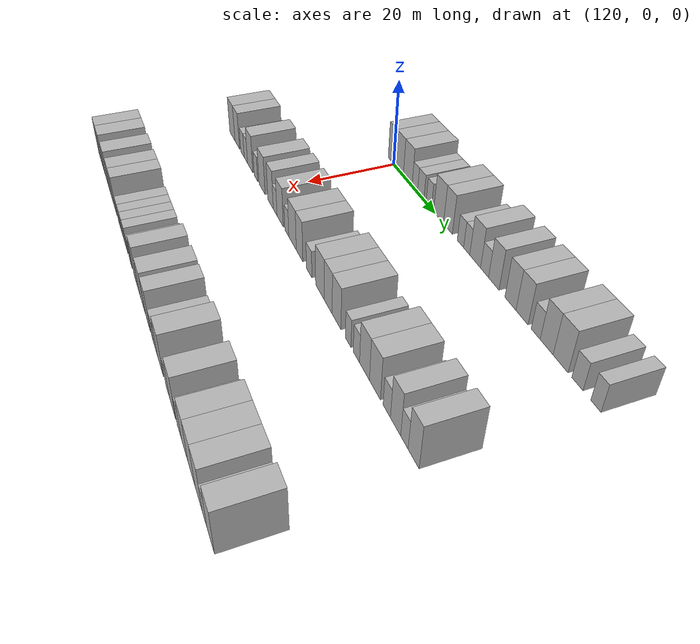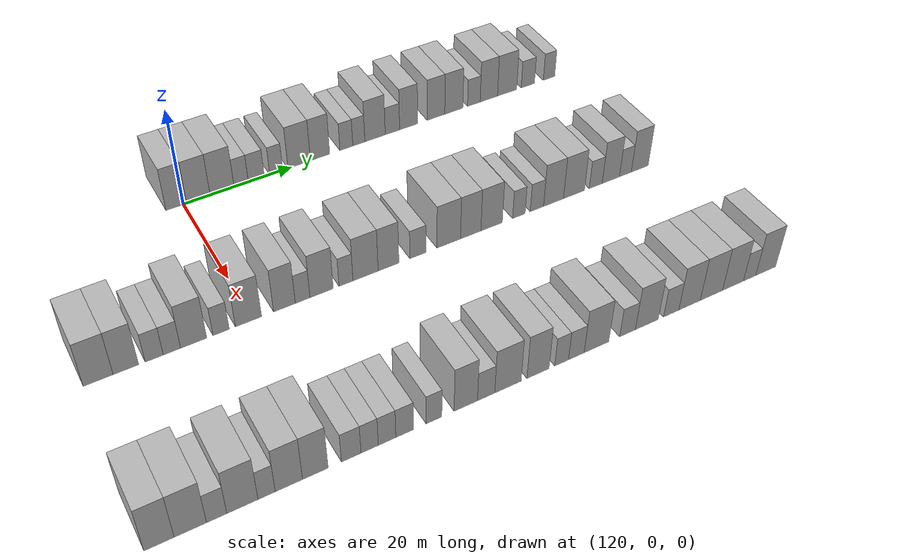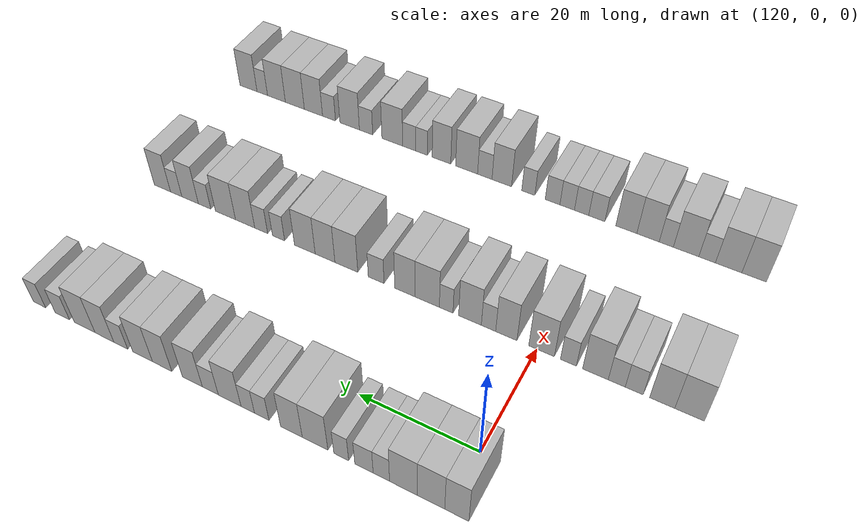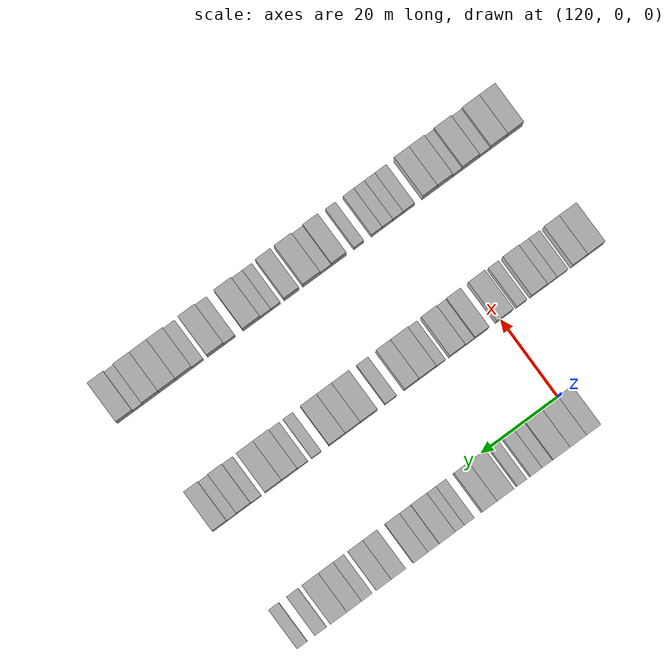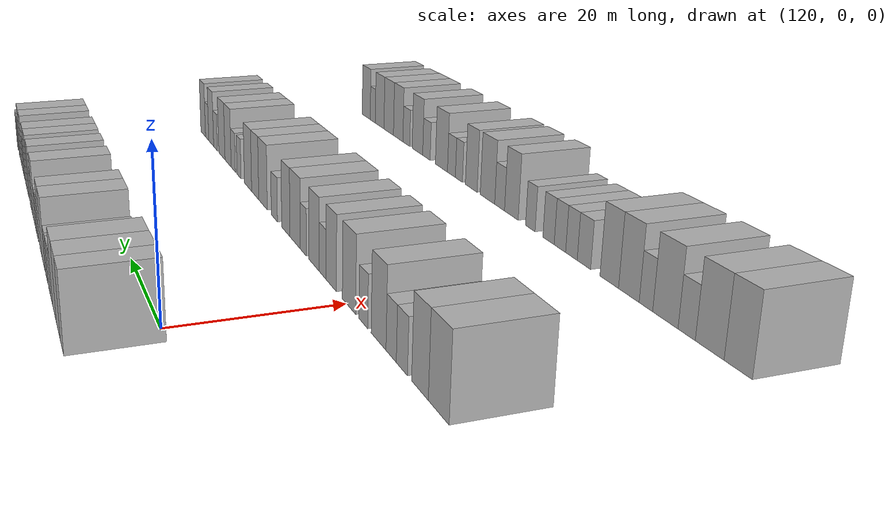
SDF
<sdf version="1.6">
 <world name="default">
  <model name="building_784">
   <static>1</static>
   <pose>115.0000 -1.3031 0 0.000000 0.000000 0.000000</pose>
   <link name="link">
    <pose>0 0 4.50 0 0 0</pose>
    <collision name="collision"><geometry><box><size>10.0000 3.6559 9.0000</size></box></geometry></collision>
    <visual name="visual">
     <cast_shadows>0</cast_shadows>
     <geometry><box><size>10.0000 3.6559 9.0000</size></box></geometry>
     <material>
      <script>
       <uri>model://HANNAS_wall/materials/scripts</uri>
       <uri>model://HANNAS_wall/materials/textures</uri>
       <name>vrc/HANNAS_wall</name>
      </script>
     </material>
    </visual>
   </link>
  </model>
  <model name="building_785">
   <static>1</static>
   <pose>115.0000 2.6404 0 0.000000 0.000000 0.000000</pose>
   <link name="link">
    <pose>0 0 4.50 0 0 0</pose>
    <collision name="collision"><geometry><box><size>10.0000 4.2312 9.0000</size></box></geometry></collision>
    <visual name="visual">
     <cast_shadows>0</cast_shadows>
     <geometry><box><size>10.0000 4.2312 9.0000</size></box></geometry>
     <material>
      <script>
       <uri>model://HANNAS_wall/materials/scripts</uri>
       <uri>model://HANNAS_wall/materials/textures</uri>
       <name>vrc/HANNAS_wall</name>
      </script>
     </material>
    </visual>
   </link>
  </model>
  <model name="building_786">
   <static>1</static>
   <pose>115.0000 6.9438 0 0.000000 0.000000 0.000000</pose>
   <link name="link">
    <pose>0 0 4.50 0 0 0</pose>
    <collision name="collision"><geometry><box><size>10.0000 4.3754 9.0000</size></box></geometry></collision>
    <visual name="visual">
     <cast_shadows>0</cast_shadows>
     <geometry><box><size>10.0000 4.3754 9.0000</size></box></geometry>
     <material>
      <script>
       <uri>model://HANNAS_wall/materials/scripts</uri>
       <uri>model://HANNAS_wall/materials/textures</uri>
       <name>vrc/HANNAS_wall</name>
      </script>
     </material>
    </visual>
   </link>
  </model>
  <model name="building_787">
   <static>1</static>
   <pose>115.0000 10.4498 0 0.000000 0.000000 0.000000</pose>
   <link name="link">
    <pose>0 0 3.00 0 0 0</pose>
    <collision name="collision"><geometry><box><size>10.0000 2.6366 6.0000</size></box></geometry></collision>
    <visual name="visual">
     <cast_shadows>0</cast_shadows>
     <geometry><box><size>10.0000 2.6366 6.0000</size></box></geometry>
     <material>
      <script>
       <uri>model://HANNAS_wall/materials/scripts</uri>
       <uri>model://HANNAS_wall/materials/textures</uri>
       <name>vrc/HANNAS_wall</name>
      </script>
     </material>
    </visual>
   </link>
  </model>
  <model name="building_788">
   <static>1</static>
   <pose>115.0000 13.2574 0 0.000000 0.000000 0.000000</pose>
   <link name="link">
    <pose>0 0 3.00 0 0 0</pose>
    <collision name="collision"><geometry><box><size>10.0000 2.9786 6.0000</size></box></geometry></collision>
    <visual name="visual">
     <cast_shadows>0</cast_shadows>
     <geometry><box><size>10.0000 2.9786 6.0000</size></box></geometry>
     <material>
      <script>
       <uri>model://HANNAS_wall/materials/scripts</uri>
       <uri>model://HANNAS_wall/materials/textures</uri>
       <name>vrc/HANNAS_wall</name>
      </script>
     </material>
    </visual>
   </link>
  </model>
  <model name="building_789">
   <static>1</static>
   <pose>115.0000 16.9742 0 0.000000 0.000000 0.000000</pose>
   <link name="link">
    <pose>0 0 3.00 0 0 0</pose>
    <collision name="collision"><geometry><box><size>10.0000 2.4550 6.0000</size></box></geometry></collision>
    <visual name="visual">
     <cast_shadows>0</cast_shadows>
     <geometry><box><size>10.0000 2.4550 6.0000</size></box></geometry>
     <material>
      <script>
       <uri>model://HANNAS_wall/materials/scripts</uri>
       <uri>model://HANNAS_wall/materials/textures</uri>
       <name>vrc/HANNAS_wall</name>
      </script>
     </material>
    </visual>
   </link>
  </model>
  <model name="building_790">
   <static>1</static>
   <pose>115.0000 21.3590 0 0.000000 0.000000 0.000000</pose>
   <link name="link">
    <pose>0 0 4.50 0 0 0</pose>
    <collision name="collision"><geometry><box><size>10.0000 4.3145 9.0000</size></box></geometry></collision>
    <visual name="visual">
     <cast_shadows>0</cast_shadows>
     <geometry><box><size>10.0000 4.3145 9.0000</size></box></geometry>
     <material>
      <script>
       <uri>model://HANNAS_wall/materials/scripts</uri>
       <uri>model://HANNAS_wall/materials/textures</uri>
       <name>vrc/HANNAS_wall</name>
      </script>
     </material>
    </visual>
   </link>
  </model>
  <model name="building_791">
   <static>1</static>
   <pose>115.0000 25.3900 0 0.000000 0.000000 0.000000</pose>
   <link name="link">
    <pose>0 0 4.50 0 0 0</pose>
    <collision name="collision"><geometry><box><size>10.0000 3.7475 9.0000</size></box></geometry></collision>
    <visual name="visual">
     <cast_shadows>0</cast_shadows>
     <geometry><box><size>10.0000 3.7475 9.0000</size></box></geometry>
     <material>
      <script>
       <uri>model://HANNAS_wall/materials/scripts</uri>
       <uri>model://HANNAS_wall/materials/textures</uri>
       <name>vrc/HANNAS_wall</name>
      </script>
     </material>
    </visual>
   </link>
  </model>
  <model name="building_792">
   <static>1</static>
   <pose>115.0000 30.5403 0 0.000000 0.000000 0.000000</pose>
   <link name="link">
    <pose>0 0 3.00 0 0 0</pose>
    <collision name="collision"><geometry><box><size>10.0000 2.5531 6.0000</size></box></geometry></collision>
    <visual name="visual">
     <cast_shadows>0</cast_shadows>
     <geometry><box><size>10.0000 2.5531 6.0000</size></box></geometry>
     <material>
      <script>
       <uri>model://HANNAS_wall/materials/scripts</uri>
       <uri>model://HANNAS_wall/materials/textures</uri>
       <name>vrc/HANNAS_wall</name>
      </script>
     </material>
    </visual>
   </link>
  </model>
  <model name="building_793">
   <static>1</static>
   <pose>115.0000 33.0215 0 0.000000 0.000000 0.000000</pose>
   <link name="link">
    <pose>0 0 3.00 0 0 0</pose>
    <collision name="collision"><geometry><box><size>10.0000 2.4093 6.0000</size></box></geometry></collision>
    <visual name="visual">
     <cast_shadows>0</cast_shadows>
     <geometry><box><size>10.0000 2.4093 6.0000</size></box></geometry>
     <material>
      <script>
       <uri>model://HANNAS_wall/materials/scripts</uri>
       <uri>model://HANNAS_wall/materials/textures</uri>
       <name>vrc/HANNAS_wall</name>
      </script>
     </material>
    </visual>
   </link>
  </model>
  <model name="building_794">
   <static>1</static>
   <pose>115.0000 36.2780 0 0.000000 0.000000 0.000000</pose>
   <link name="link">
    <pose>0 0 4.50 0 0 0</pose>
    <collision name="collision"><geometry><box><size>10.0000 4.1036 9.0000</size></box></geometry></collision>
    <visual name="visual">
     <cast_shadows>0</cast_shadows>
     <geometry><box><size>10.0000 4.1036 9.0000</size></box></geometry>
     <material>
      <script>
       <uri>model://HANNAS_wall/materials/scripts</uri>
       <uri>model://HANNAS_wall/materials/textures</uri>
       <name>vrc/HANNAS_wall</name>
      </script>
     </material>
    </visual>
   </link>
  </model>
  <model name="building_795">
   <static>1</static>
   <pose>115.0000 39.7984 0 0.000000 0.000000 0.000000</pose>
   <link name="link">
    <pose>0 0 3.00 0 0 0</pose>
    <collision name="collision"><geometry><box><size>10.0000 2.9373 6.0000</size></box></geometry></collision>
    <visual name="visual">
     <cast_shadows>0</cast_shadows>
     <geometry><box><size>10.0000 2.9373 6.0000</size></box></geometry>
     <material>
      <script>
       <uri>model://HANNAS_wall/materials/scripts</uri>
       <uri>model://HANNAS_wall/materials/textures</uri>
       <name>vrc/HANNAS_wall</name>
      </script>
     </material>
    </visual>
   </link>
  </model>
  <model name="building_796">
   <static>1</static>
   <pose>115.0000 43.1281 0 0.000000 0.000000 0.000000</pose>
   <link name="link">
    <pose>0 0 4.50 0 0 0</pose>
    <collision name="collision"><geometry><box><size>10.0000 3.7220 9.0000</size></box></geometry></collision>
    <visual name="visual">
     <cast_shadows>0</cast_shadows>
     <geometry><box><size>10.0000 3.7220 9.0000</size></box></geometry>
     <material>
      <script>
       <uri>model://HANNAS_wall/materials/scripts</uri>
       <uri>model://HANNAS_wall/materials/textures</uri>
       <name>vrc/HANNAS_wall</name>
      </script>
     </material>
    </visual>
   </link>
  </model>
  <model name="building_797">
   <static>1</static>
   <pose>115.0000 48.8406 0 0.000000 0.000000 0.000000</pose>
   <link name="link">
    <pose>0 0 4.50 0 0 0</pose>
    <collision name="collision"><geometry><box><size>10.0000 3.7031 9.0000</size></box></geometry></collision>
    <visual name="visual">
     <cast_shadows>0</cast_shadows>
     <geometry><box><size>10.0000 3.7031 9.0000</size></box></geometry>
     <material>
      <script>
       <uri>model://HANNAS_wall/materials/scripts</uri>
       <uri>model://HANNAS_wall/materials/textures</uri>
       <name>vrc/HANNAS_wall</name>
      </script>
     </material>
    </visual>
   </link>
  </model>
  <model name="building_798">
   <static>1</static>
   <pose>115.0000 52.6161 0 0.000000 0.000000 0.000000</pose>
   <link name="link">
    <pose>0 0 4.50 0 0 0</pose>
    <collision name="collision"><geometry><box><size>10.0000 3.8478 9.0000</size></box></geometry></collision>
    <visual name="visual">
     <cast_shadows>0</cast_shadows>
     <geometry><box><size>10.0000 3.8478 9.0000</size></box></geometry>
     <material>
      <script>
       <uri>model://HANNAS_wall/materials/scripts</uri>
       <uri>model://HANNAS_wall/materials/textures</uri>
       <name>vrc/HANNAS_wall</name>
      </script>
     </material>
    </visual>
   </link>
  </model>
  <model name="building_799">
   <static>1</static>
   <pose>115.0000 56.9078 0 0.000000 0.000000 0.000000</pose>
   <link name="link">
    <pose>0 0 3.00 0 0 0</pose>
    <collision name="collision"><geometry><box><size>10.0000 2.7357 6.0000</size></box></geometry></collision>
    <visual name="visual">
     <cast_shadows>0</cast_shadows>
     <geometry><box><size>10.0000 2.7357 6.0000</size></box></geometry>
     <material>
      <script>
       <uri>model://HANNAS_wall/materials/scripts</uri>
       <uri>model://HANNAS_wall/materials/textures</uri>
       <name>vrc/HANNAS_wall</name>
      </script>
     </material>
    </visual>
   </link>
  </model>
  <model name="building_800">
   <static>1</static>
   <pose>115.0000 60.1679 0 0.000000 0.000000 0.000000</pose>
   <link name="link">
    <pose>0 0 4.50 0 0 0</pose>
    <collision name="collision"><geometry><box><size>10.0000 3.7845 9.0000</size></box></geometry></collision>
    <visual name="visual">
     <cast_shadows>0</cast_shadows>
     <geometry><box><size>10.0000 3.7845 9.0000</size></box></geometry>
     <material>
      <script>
       <uri>model://HANNAS_wall/materials/scripts</uri>
       <uri>model://HANNAS_wall/materials/textures</uri>
       <name>vrc/HANNAS_wall</name>
      </script>
     </material>
    </visual>
   </link>
  </model>
  <model name="building_801">
   <static>1</static>
   <pose>115.0000 64.1778 0 0.000000 0.000000 0.000000</pose>
   <link name="link">
    <pose>0 0 4.50 0 0 0</pose>
    <collision name="collision"><geometry><box><size>10.0000 4.2352 9.0000</size></box></geometry></collision>
    <visual name="visual">
     <cast_shadows>0</cast_shadows>
     <geometry><box><size>10.0000 4.2352 9.0000</size></box></geometry>
     <material>
      <script>
       <uri>model://HANNAS_wall/materials/scripts</uri>
       <uri>model://HANNAS_wall/materials/textures</uri>
       <name>vrc/HANNAS_wall</name>
      </script>
     </material>
    </visual>
   </link>
  </model>
  <model name="building_802">
   <static>1</static>
   <pose>115.0000 68.7933 0 0.000000 0.000000 0.000000</pose>
   <link name="link">
    <pose>0 0 3.00 0 0 0</pose>
    <collision name="collision"><geometry><box><size>10.0000 2.9958 6.0000</size></box></geometry></collision>
    <visual name="visual">
     <cast_shadows>0</cast_shadows>
     <geometry><box><size>10.0000 2.9958 6.0000</size></box></geometry>
     <material>
      <script>
       <uri>model://HANNAS_wall/materials/scripts</uri>
       <uri>model://HANNAS_wall/materials/textures</uri>
       <name>vrc/HANNAS_wall</name>
      </script>
     </material>
    </visual>
   </link>
  </model>
  <model name="building_803">
   <static>1</static>
   <pose>115.0000 73.5848 0 0.000000 0.000000 0.000000</pose>
   <link name="link">
    <pose>0 0 3.00 0 0 0</pose>
    <collision name="collision"><geometry><box><size>10.0000 2.5872 6.0000</size></box></geometry></collision>
    <visual name="visual">
     <cast_shadows>0</cast_shadows>
     <geometry><box><size>10.0000 2.5872 6.0000</size></box></geometry>
     <material>
      <script>
       <uri>model://HANNAS_wall/materials/scripts</uri>
       <uri>model://HANNAS_wall/materials/textures</uri>
       <name>vrc/HANNAS_wall</name>
      </script>
     </material>
    </visual>
   </link>
  </model>
  <model name="building_1009">
   <static>1</static>
   <pose>145.0000 -24.2565 0 0.000000 0.000000 0.000000</pose>
   <link name="link">
    <pose>0 0 4.50 0 0 0</pose>
    <collision name="collision"><geometry><box><size>10.0000 4.4673 9.0000</size></box></geometry></collision>
    <visual name="visual">
     <cast_shadows>0</cast_shadows>
     <geometry><box><size>10.0000 4.4673 9.0000</size></box></geometry>
     <material>
      <script>
       <uri>model://HANNAS_wall/materials/scripts</uri>
       <uri>model://HANNAS_wall/materials/textures</uri>
       <name>vrc/HANNAS_wall</name>
      </script>
     </material>
    </visual>
   </link>
  </model>
  <model name="building_1010">
   <static>1</static>
   <pose>145.0000 -20.0893 0 0.000000 0.000000 0.000000</pose>
   <link name="link">
    <pose>0 0 4.50 0 0 0</pose>
    <collision name="collision"><geometry><box><size>10.0000 3.8671 9.0000</size></box></geometry></collision>
    <visual name="visual">
     <cast_shadows>0</cast_shadows>
     <geometry><box><size>10.0000 3.8671 9.0000</size></box></geometry>
     <material>
      <script>
       <uri>model://HANNAS_wall/materials/scripts</uri>
       <uri>model://HANNAS_wall/materials/textures</uri>
       <name>vrc/HANNAS_wall</name>
      </script>
     </material>
    </visual>
   </link>
  </model>
  <model name="building_1011">
   <static>1</static>
   <pose>145.0000 -15.7560 0 0.000000 0.000000 0.000000</pose>
   <link name="link">
    <pose>0 0 3.00 0 0 0</pose>
    <collision name="collision"><geometry><box><size>10.0000 2.7994 6.0000</size></box></geometry></collision>
    <visual name="visual">
     <cast_shadows>0</cast_shadows>
     <geometry><box><size>10.0000 2.7994 6.0000</size></box></geometry>
     <material>
      <script>
       <uri>model://HANNAS_wall/materials/scripts</uri>
       <uri>model://HANNAS_wall/materials/textures</uri>
       <name>vrc/HANNAS_wall</name>
      </script>
     </material>
    </visual>
   </link>
  </model>
  <model name="building_1012">
   <static>1</static>
   <pose>145.0000 -13.0049 0 0.000000 0.000000 0.000000</pose>
   <link name="link">
    <pose>0 0 3.00 0 0 0</pose>
    <collision name="collision"><geometry><box><size>10.0000 2.7028 6.0000</size></box></geometry></collision>
    <visual name="visual">
     <cast_shadows>0</cast_shadows>
     <geometry><box><size>10.0000 2.7028 6.0000</size></box></geometry>
     <material>
      <script>
       <uri>model://HANNAS_wall/materials/scripts</uri>
       <uri>model://HANNAS_wall/materials/textures</uri>
       <name>vrc/HANNAS_wall</name>
      </script>
     </material>
    </visual>
   </link>
  </model>
  <model name="building_1013">
   <static>1</static>
   <pose>145.0000 -9.5895 0 0.000000 0.000000 0.000000</pose>
   <link name="link">
    <pose>0 0 4.50 0 0 0</pose>
    <collision name="collision"><geometry><box><size>10.0000 4.1281 9.0000</size></box></geometry></collision>
    <visual name="visual">
     <cast_shadows>0</cast_shadows>
     <geometry><box><size>10.0000 4.1281 9.0000</size></box></geometry>
     <material>
      <script>
       <uri>model://HANNAS_wall/materials/scripts</uri>
       <uri>model://HANNAS_wall/materials/textures</uri>
       <name>vrc/HANNAS_wall</name>
      </script>
     </material>
    </visual>
   </link>
  </model>
  <model name="building_1014">
   <static>1</static>
   <pose>145.0000 -5.2146 0 0.000000 0.000000 0.000000</pose>
   <link name="link">
    <pose>0 0 3.00 0 0 0</pose>
    <collision name="collision"><geometry><box><size>10.0000 2.6216 6.0000</size></box></geometry></collision>
    <visual name="visual">
     <cast_shadows>0</cast_shadows>
     <geometry><box><size>10.0000 2.6216 6.0000</size></box></geometry>
     <material>
      <script>
       <uri>model://HANNAS_wall/materials/scripts</uri>
       <uri>model://HANNAS_wall/materials/textures</uri>
       <name>vrc/HANNAS_wall</name>
      </script>
     </material>
    </visual>
   </link>
  </model>
  <model name="building_1015">
   <static>1</static>
   <pose>145.0000 -0.7611 0 0.000000 0.000000 0.000000</pose>
   <link name="link">
    <pose>0 0 4.50 0 0 0</pose>
    <collision name="collision"><geometry><box><size>10.0000 4.2856 9.0000</size></box></geometry></collision>
    <visual name="visual">
     <cast_shadows>0</cast_shadows>
     <geometry><box><size>10.0000 4.2856 9.0000</size></box></geometry>
     <material>
      <script>
       <uri>model://HANNAS_wall/materials/scripts</uri>
       <uri>model://HANNAS_wall/materials/textures</uri>
       <name>vrc/HANNAS_wall</name>
      </script>
     </material>
    </visual>
   </link>
  </model>
  <model name="building_1016">
   <static>1</static>
   <pose>145.0000 5.2053 0 0.000000 0.000000 0.000000</pose>
   <link name="link">
    <pose>0 0 4.50 0 0 0</pose>
    <collision name="collision"><geometry><box><size>10.0000 3.6470 9.0000</size></box></geometry></collision>
    <visual name="visual">
     <cast_shadows>0</cast_shadows>
     <geometry><box><size>10.0000 3.6470 9.0000</size></box></geometry>
     <material>
      <script>
       <uri>model://HANNAS_wall/materials/scripts</uri>
       <uri>model://HANNAS_wall/materials/textures</uri>
       <name>vrc/HANNAS_wall</name>
      </script>
     </material>
    </visual>
   </link>
  </model>
  <model name="building_1017">
   <static>1</static>
   <pose>145.0000 8.2742 0 0.000000 0.000000 0.000000</pose>
   <link name="link">
    <pose>0 0 3.00 0 0 0</pose>
    <collision name="collision"><geometry><box><size>10.0000 2.4909 6.0000</size></box></geometry></collision>
    <visual name="visual">
     <cast_shadows>0</cast_shadows>
     <geometry><box><size>10.0000 2.4909 6.0000</size></box></geometry>
     <material>
      <script>
       <uri>model://HANNAS_wall/materials/scripts</uri>
       <uri>model://HANNAS_wall/materials/textures</uri>
       <name>vrc/HANNAS_wall</name>
      </script>
     </material>
    </visual>
   </link>
  </model>
  <model name="building_1018">
   <static>1</static>
   <pose>145.0000 11.5213 0 0.000000 0.000000 0.000000</pose>
   <link name="link">
    <pose>0 0 4.50 0 0 0</pose>
    <collision name="collision"><geometry><box><size>10.0000 4.0032 9.0000</size></box></geometry></collision>
    <visual name="visual">
     <cast_shadows>0</cast_shadows>
     <geometry><box><size>10.0000 4.0032 9.0000</size></box></geometry>
     <material>
      <script>
       <uri>model://HANNAS_wall/materials/scripts</uri>
       <uri>model://HANNAS_wall/materials/textures</uri>
       <name>vrc/HANNAS_wall</name>
      </script>
     </material>
    </visual>
   </link>
  </model>
  <model name="building_1019">
   <static>1</static>
   <pose>145.0000 15.7446 0 0.000000 0.000000 0.000000</pose>
   <link name="link">
    <pose>0 0 3.00 0 0 0</pose>
    <collision name="collision"><geometry><box><size>10.0000 2.4435 6.0000</size></box></geometry></collision>
    <visual name="visual">
     <cast_shadows>0</cast_shadows>
     <geometry><box><size>10.0000 2.4435 6.0000</size></box></geometry>
     <material>
      <script>
       <uri>model://HANNAS_wall/materials/scripts</uri>
       <uri>model://HANNAS_wall/materials/textures</uri>
       <name>vrc/HANNAS_wall</name>
      </script>
     </material>
    </visual>
   </link>
  </model>
  <model name="building_1020">
   <static>1</static>
   <pose>145.0000 19.1938 0 0.000000 0.000000 0.000000</pose>
   <link name="link">
    <pose>0 0 4.50 0 0 0</pose>
    <collision name="collision"><geometry><box><size>10.0000 4.4550 9.0000</size></box></geometry></collision>
    <visual name="visual">
     <cast_shadows>0</cast_shadows>
     <geometry><box><size>10.0000 4.4550 9.0000</size></box></geometry>
     <material>
      <script>
       <uri>model://HANNAS_wall/materials/scripts</uri>
       <uri>model://HANNAS_wall/materials/textures</uri>
       <name>vrc/HANNAS_wall</name>
      </script>
     </material>
    </visual>
   </link>
  </model>
  <model name="building_1021">
   <static>1</static>
   <pose>145.0000 23.2889 0 0.000000 0.000000 0.000000</pose>
   <link name="link">
    <pose>0 0 4.50 0 0 0</pose>
    <collision name="collision"><geometry><box><size>10.0000 3.7353 9.0000</size></box></geometry></collision>
    <visual name="visual">
     <cast_shadows>0</cast_shadows>
     <geometry><box><size>10.0000 3.7353 9.0000</size></box></geometry>
     <material>
      <script>
       <uri>model://HANNAS_wall/materials/scripts</uri>
       <uri>model://HANNAS_wall/materials/textures</uri>
       <name>vrc/HANNAS_wall</name>
      </script>
     </material>
    </visual>
   </link>
  </model>
  <model name="building_1022">
   <static>1</static>
   <pose>145.0000 28.6452 0 0.000000 0.000000 0.000000</pose>
   <link name="link">
    <pose>0 0 3.00 0 0 0</pose>
    <collision name="collision"><geometry><box><size>10.0000 2.9772 6.0000</size></box></geometry></collision>
    <visual name="visual">
     <cast_shadows>0</cast_shadows>
     <geometry><box><size>10.0000 2.9772 6.0000</size></box></geometry>
     <material>
      <script>
       <uri>model://HANNAS_wall/materials/scripts</uri>
       <uri>model://HANNAS_wall/materials/textures</uri>
       <name>vrc/HANNAS_wall</name>
      </script>
     </material>
    </visual>
   </link>
  </model>
  <model name="building_1023">
   <static>1</static>
   <pose>145.0000 34.3503 0 0.000000 0.000000 0.000000</pose>
   <link name="link">
    <pose>0 0 4.50 0 0 0</pose>
    <collision name="collision"><geometry><box><size>10.0000 4.4330 9.0000</size></box></geometry></collision>
    <visual name="visual">
     <cast_shadows>0</cast_shadows>
     <geometry><box><size>10.0000 4.4330 9.0000</size></box></geometry>
     <material>
      <script>
       <uri>model://HANNAS_wall/materials/scripts</uri>
       <uri>model://HANNAS_wall/materials/textures</uri>
       <name>vrc/HANNAS_wall</name>
      </script>
     </material>
    </visual>
   </link>
  </model>
  <model name="building_1024">
   <static>1</static>
   <pose>145.0000 38.5092 0 0.000000 0.000000 0.000000</pose>
   <link name="link">
    <pose>0 0 4.50 0 0 0</pose>
    <collision name="collision"><geometry><box><size>10.0000 3.8848 9.0000</size></box></geometry></collision>
    <visual name="visual">
     <cast_shadows>0</cast_shadows>
     <geometry><box><size>10.0000 3.8848 9.0000</size></box></geometry>
     <material>
      <script>
       <uri>model://HANNAS_wall/materials/scripts</uri>
       <uri>model://HANNAS_wall/materials/textures</uri>
       <name>vrc/HANNAS_wall</name>
      </script>
     </material>
    </visual>
   </link>
  </model>
  <model name="building_1025">
   <static>1</static>
   <pose>145.0000 42.5201 0 0.000000 0.000000 0.000000</pose>
   <link name="link">
    <pose>0 0 4.50 0 0 0</pose>
    <collision name="collision"><geometry><box><size>10.0000 4.1371 9.0000</size></box></geometry></collision>
    <visual name="visual">
     <cast_shadows>0</cast_shadows>
     <geometry><box><size>10.0000 4.1371 9.0000</size></box></geometry>
     <material>
      <script>
       <uri>model://HANNAS_wall/materials/scripts</uri>
       <uri>model://HANNAS_wall/materials/textures</uri>
       <name>vrc/HANNAS_wall</name>
      </script>
     </material>
    </visual>
   </link>
  </model>
  <model name="building_1026">
   <static>1</static>
   <pose>145.0000 47.8273 0 0.000000 0.000000 0.000000</pose>
   <link name="link">
    <pose>0 0 3.00 0 0 0</pose>
    <collision name="collision"><geometry><box><size>10.0000 2.4773 6.0000</size></box></geometry></collision>
    <visual name="visual">
     <cast_shadows>0</cast_shadows>
     <geometry><box><size>10.0000 2.4773 6.0000</size></box></geometry>
     <material>
      <script>
       <uri>model://HANNAS_wall/materials/scripts</uri>
       <uri>model://HANNAS_wall/materials/textures</uri>
       <name>vrc/HANNAS_wall</name>
      </script>
     </material>
    </visual>
   </link>
  </model>
  <model name="building_1027">
   <static>1</static>
   <pose>145.0000 51.4027 0 0.000000 0.000000 0.000000</pose>
   <link name="link">
    <pose>0 0 3.00 0 0 0</pose>
    <collision name="collision"><geometry><box><size>10.0000 2.6734 6.0000</size></box></geometry></collision>
    <visual name="visual">
     <cast_shadows>0</cast_shadows>
     <geometry><box><size>10.0000 2.6734 6.0000</size></box></geometry>
     <material>
      <script>
       <uri>model://HANNAS_wall/materials/scripts</uri>
       <uri>model://HANNAS_wall/materials/textures</uri>
       <name>vrc/HANNAS_wall</name>
      </script>
     </material>
    </visual>
   </link>
  </model>
  <model name="building_1028">
   <static>1</static>
   <pose>145.0000 54.7599 0 0.000000 0.000000 0.000000</pose>
   <link name="link">
    <pose>0 0 4.50 0 0 0</pose>
    <collision name="collision"><geometry><box><size>10.0000 4.0411 9.0000</size></box></geometry></collision>
    <visual name="visual">
     <cast_shadows>0</cast_shadows>
     <geometry><box><size>10.0000 4.0411 9.0000</size></box></geometry>
     <material>
      <script>
       <uri>model://HANNAS_wall/materials/scripts</uri>
       <uri>model://HANNAS_wall/materials/textures</uri>
       <name>vrc/HANNAS_wall</name>
      </script>
     </material>
    </visual>
   </link>
  </model>
  <model name="building_1029">
   <static>1</static>
   <pose>145.0000 58.9221 0 0.000000 0.000000 0.000000</pose>
   <link name="link">
    <pose>0 0 4.50 0 0 0</pose>
    <collision name="collision"><geometry><box><size>10.0000 4.2832 9.0000</size></box></geometry></collision>
    <visual name="visual">
     <cast_shadows>0</cast_shadows>
     <geometry><box><size>10.0000 4.2832 9.0000</size></box></geometry>
     <material>
      <script>
       <uri>model://HANNAS_wall/materials/scripts</uri>
       <uri>model://HANNAS_wall/materials/textures</uri>
       <name>vrc/HANNAS_wall</name>
      </script>
     </material>
    </visual>
   </link>
  </model>
  <model name="building_1030">
   <static>1</static>
   <pose>145.0000 63.4124 0 0.000000 0.000000 0.000000</pose>
   <link name="link">
    <pose>0 0 3.00 0 0 0</pose>
    <collision name="collision"><geometry><box><size>10.0000 2.6974 6.0000</size></box></geometry></collision>
    <visual name="visual">
     <cast_shadows>0</cast_shadows>
     <geometry><box><size>10.0000 2.6974 6.0000</size></box></geometry>
     <material>
      <script>
       <uri>model://HANNAS_wall/materials/scripts</uri>
       <uri>model://HANNAS_wall/materials/textures</uri>
       <name>vrc/HANNAS_wall</name>
      </script>
     </material>
    </visual>
   </link>
  </model>
  <model name="building_1031">
   <static>1</static>
   <pose>145.0000 66.5759 0 0.000000 0.000000 0.000000</pose>
   <link name="link">
    <pose>0 0 4.50 0 0 0</pose>
    <collision name="collision"><geometry><box><size>10.0000 3.6296 9.0000</size></box></geometry></collision>
    <visual name="visual">
     <cast_shadows>0</cast_shadows>
     <geometry><box><size>10.0000 3.6296 9.0000</size></box></geometry>
     <material>
      <script>
       <uri>model://HANNAS_wall/materials/scripts</uri>
       <uri>model://HANNAS_wall/materials/textures</uri>
       <name>vrc/HANNAS_wall</name>
      </script>
     </material>
    </visual>
   </link>
  </model>
  <model name="building_1032">
   <static>1</static>
   <pose>145.0000 69.6503 0 0.000000 0.000000 0.000000</pose>
   <link name="link">
    <pose>0 0 3.00 0 0 0</pose>
    <collision name="collision"><geometry><box><size>10.0000 2.5193 6.0000</size></box></geometry></collision>
    <visual name="visual">
     <cast_shadows>0</cast_shadows>
     <geometry><box><size>10.0000 2.5193 6.0000</size></box></geometry>
     <material>
      <script>
       <uri>model://HANNAS_wall/materials/scripts</uri>
       <uri>model://HANNAS_wall/materials/textures</uri>
       <name>vrc/HANNAS_wall</name>
      </script>
     </material>
    </visual>
   </link>
  </model>
  <model name="building_1033">
   <static>1</static>
   <pose>145.0000 72.7210 0 0.000000 0.000000 0.000000</pose>
   <link name="link">
    <pose>0 0 4.50 0 0 0</pose>
    <collision name="collision"><geometry><box><size>10.0000 3.6221 9.0000</size></box></geometry></collision>
    <visual name="visual">
     <cast_shadows>0</cast_shadows>
     <geometry><box><size>10.0000 3.6221 9.0000</size></box></geometry>
     <material>
      <script>
       <uri>model://HANNAS_wall/materials/scripts</uri>
       <uri>model://HANNAS_wall/materials/textures</uri>
       <name>vrc/HANNAS_wall</name>
      </script>
     </material>
    </visual>
   </link>
  </model>
  <model name="building_1240">
   <static>1</static>
   <pose>175.0000 -25.6956 0 0.000000 0.000000 0.000000</pose>
   <link name="link">
    <pose>0 0 4.50 0 0 0</pose>
    <collision name="collision"><geometry><box><size>10.0000 4.0741 9.0000</size></box></geometry></collision>
    <visual name="visual">
     <cast_shadows>0</cast_shadows>
     <geometry><box><size>10.0000 4.0741 9.0000</size></box></geometry>
     <material>
      <script>
       <uri>model://HANNAS_wall/materials/scripts</uri>
       <uri>model://HANNAS_wall/materials/textures</uri>
       <name>vrc/HANNAS_wall</name>
      </script>
     </material>
    </visual>
   </link>
  </model>
  <model name="building_1241">
   <static>1</static>
   <pose>175.0000 -21.4357 0 0.000000 0.000000 0.000000</pose>
   <link name="link">
    <pose>0 0 4.50 0 0 0</pose>
    <collision name="collision"><geometry><box><size>10.0000 4.4457 9.0000</size></box></geometry></collision>
    <visual name="visual">
     <cast_shadows>0</cast_shadows>
     <geometry><box><size>10.0000 4.4457 9.0000</size></box></geometry>
     <material>
      <script>
       <uri>model://HANNAS_wall/materials/scripts</uri>
       <uri>model://HANNAS_wall/materials/textures</uri>
       <name>vrc/HANNAS_wall</name>
      </script>
     </material>
    </visual>
   </link>
  </model>
  <model name="building_1242">
   <static>1</static>
   <pose>175.0000 -17.7952 0 0.000000 0.000000 0.000000</pose>
   <link name="link">
    <pose>0 0 3.00 0 0 0</pose>
    <collision name="collision"><geometry><box><size>10.0000 2.8353 6.0000</size></box></geometry></collision>
    <visual name="visual">
     <cast_shadows>0</cast_shadows>
     <geometry><box><size>10.0000 2.8353 6.0000</size></box></geometry>
     <material>
      <script>
       <uri>model://HANNAS_wall/materials/scripts</uri>
       <uri>model://HANNAS_wall/materials/textures</uri>
       <name>vrc/HANNAS_wall</name>
      </script>
     </material>
    </visual>
   </link>
  </model>
  <model name="building_1243">
   <static>1</static>
   <pose>175.0000 -14.1712 0 0.000000 0.000000 0.000000</pose>
   <link name="link">
    <pose>0 0 4.50 0 0 0</pose>
    <collision name="collision"><geometry><box><size>10.0000 4.4127 9.0000</size></box></geometry></collision>
    <visual name="visual">
     <cast_shadows>0</cast_shadows>
     <geometry><box><size>10.0000 4.4127 9.0000</size></box></geometry>
     <material>
      <script>
       <uri>model://HANNAS_wall/materials/scripts</uri>
       <uri>model://HANNAS_wall/materials/textures</uri>
       <name>vrc/HANNAS_wall</name>
      </script>
     </material>
    </visual>
   </link>
  </model>
  <model name="building_1244">
   <static>1</static>
   <pose>175.0000 -10.7203 0 0.000000 0.000000 0.000000</pose>
   <link name="link">
    <pose>0 0 3.00 0 0 0</pose>
    <collision name="collision"><geometry><box><size>10.0000 2.4890 6.0000</size></box></geometry></collision>
    <visual name="visual">
     <cast_shadows>0</cast_shadows>
     <geometry><box><size>10.0000 2.4890 6.0000</size></box></geometry>
     <material>
      <script>
       <uri>model://HANNAS_wall/materials/scripts</uri>
       <uri>model://HANNAS_wall/materials/textures</uri>
       <name>vrc/HANNAS_wall</name>
      </script>
     </material>
    </visual>
   </link>
  </model>
  <model name="building_1245">
   <static>1</static>
   <pose>175.0000 -7.4815 0 0.000000 0.000000 0.000000</pose>
   <link name="link">
    <pose>0 0 4.50 0 0 0</pose>
    <collision name="collision"><geometry><box><size>10.0000 3.9887 9.0000</size></box></geometry></collision>
    <visual name="visual">
     <cast_shadows>0</cast_shadows>
     <geometry><box><size>10.0000 3.9887 9.0000</size></box></geometry>
     <material>
      <script>
       <uri>model://HANNAS_wall/materials/scripts</uri>
       <uri>model://HANNAS_wall/materials/textures</uri>
       <name>vrc/HANNAS_wall</name>
      </script>
     </material>
    </visual>
   </link>
  </model>
  <model name="building_1246">
   <static>1</static>
   <pose>175.0000 -3.5859 0 0.000000 0.000000 0.000000</pose>
   <link name="link">
    <pose>0 0 4.50 0 0 0</pose>
    <collision name="collision"><geometry><box><size>10.0000 3.8024 9.0000</size></box></geometry></collision>
    <visual name="visual">
     <cast_shadows>0</cast_shadows>
     <geometry><box><size>10.0000 3.8024 9.0000</size></box></geometry>
     <material>
      <script>
       <uri>model://HANNAS_wall/materials/scripts</uri>
       <uri>model://HANNAS_wall/materials/textures</uri>
       <name>vrc/HANNAS_wall</name>
      </script>
     </material>
    </visual>
   </link>
  </model>
  <model name="building_1247">
   <static>1</static>
   <pose>175.0000 1.8047 0 0.000000 0.000000 0.000000</pose>
   <link name="link">
    <pose>0 0 3.00 0 0 0</pose>
    <collision name="collision"><geometry><box><size>10.0000 2.9788 6.0000</size></box></geometry></collision>
    <visual name="visual">
     <cast_shadows>0</cast_shadows>
     <geometry><box><size>10.0000 2.9788 6.0000</size></box></geometry>
     <material>
      <script>
       <uri>model://HANNAS_wall/materials/scripts</uri>
       <uri>model://HANNAS_wall/materials/textures</uri>
       <name>vrc/HANNAS_wall</name>
      </script>
     </material>
    </visual>
   </link>
  </model>
  <model name="building_1248">
   <static>1</static>
   <pose>175.0000 4.6279 0 0.000000 0.000000 0.000000</pose>
   <link name="link">
    <pose>0 0 3.00 0 0 0</pose>
    <collision name="collision"><geometry><box><size>10.0000 2.6675 6.0000</size></box></geometry></collision>
    <visual name="visual">
     <cast_shadows>0</cast_shadows>
     <geometry><box><size>10.0000 2.6675 6.0000</size></box></geometry>
     <material>
      <script>
       <uri>model://HANNAS_wall/materials/scripts</uri>
       <uri>model://HANNAS_wall/materials/textures</uri>
       <name>vrc/HANNAS_wall</name>
      </script>
     </material>
    </visual>
   </link>
  </model>
  <model name="building_1249">
   <static>1</static>
   <pose>175.0000 7.3331 0 0.000000 0.000000 0.000000</pose>
   <link name="link">
    <pose>0 0 3.00 0 0 0</pose>
    <collision name="collision"><geometry><box><size>10.0000 2.7429 6.0000</size></box></geometry></collision>
    <visual name="visual">
     <cast_shadows>0</cast_shadows>
     <geometry><box><size>10.0000 2.7429 6.0000</size></box></geometry>
     <material>
      <script>
       <uri>model://HANNAS_wall/materials/scripts</uri>
       <uri>model://HANNAS_wall/materials/textures</uri>
       <name>vrc/HANNAS_wall</name>
      </script>
     </material>
    </visual>
   </link>
  </model>
  <model name="building_1250">
   <static>1</static>
   <pose>175.0000 10.1037 0 0.000000 0.000000 0.000000</pose>
   <link name="link">
    <pose>0 0 3.00 0 0 0</pose>
    <collision name="collision"><geometry><box><size>10.0000 2.7982 6.0000</size></box></geometry></collision>
    <visual name="visual">
     <cast_shadows>0</cast_shadows>
     <geometry><box><size>10.0000 2.7982 6.0000</size></box></geometry>
     <material>
      <script>
       <uri>model://HANNAS_wall/materials/scripts</uri>
       <uri>model://HANNAS_wall/materials/textures</uri>
       <name>vrc/HANNAS_wall</name>
      </script>
     </material>
    </visual>
   </link>
  </model>
  <model name="building_1251">
   <static>1</static>
   <pose>175.0000 14.7697 0 0.000000 0.000000 0.000000</pose>
   <link name="link">
    <pose>0 0 3.00 0 0 0</pose>
    <collision name="collision"><geometry><box><size>10.0000 2.5338 6.0000</size></box></geometry></collision>
    <visual name="visual">
     <cast_shadows>0</cast_shadows>
     <geometry><box><size>10.0000 2.5338 6.0000</size></box></geometry>
     <material>
      <script>
       <uri>model://HANNAS_wall/materials/scripts</uri>
       <uri>model://HANNAS_wall/materials/textures</uri>
       <name>vrc/HANNAS_wall</name>
      </script>
     </material>
    </visual>
   </link>
  </model>
  <model name="building_1252">
   <static>1</static>
   <pose>175.0000 19.9654 0 0.000000 0.000000 0.000000</pose>
   <link name="link">
    <pose>0 0 4.50 0 0 0</pose>
    <collision name="collision"><geometry><box><size>10.0000 3.8575 9.0000</size></box></geometry></collision>
    <visual name="visual">
     <cast_shadows>0</cast_shadows>
     <geometry><box><size>10.0000 3.8575 9.0000</size></box></geometry>
     <material>
      <script>
       <uri>model://HANNAS_wall/materials/scripts</uri>
       <uri>model://HANNAS_wall/materials/textures</uri>
       <name>vrc/HANNAS_wall</name>
      </script>
     </material>
    </visual>
   </link>
  </model>
  <model name="building_1253">
   <static>1</static>
   <pose>175.0000 23.3402 0 0.000000 0.000000 0.000000</pose>
   <link name="link">
    <pose>0 0 3.00 0 0 0</pose>
    <collision name="collision"><geometry><box><size>10.0000 2.8921 6.0000</size></box></geometry></collision>
    <visual name="visual">
     <cast_shadows>0</cast_shadows>
     <geometry><box><size>10.0000 2.8921 6.0000</size></box></geometry>
     <material>
      <script>
       <uri>model://HANNAS_wall/materials/scripts</uri>
       <uri>model://HANNAS_wall/materials/textures</uri>
       <name>vrc/HANNAS_wall</name>
      </script>
     </material>
    </visual>
   </link>
  </model>
  <model name="building_1254">
   <static>1</static>
   <pose>175.0000 27.0163 0 0.000000 0.000000 0.000000</pose>
   <link name="link">
    <pose>0 0 4.50 0 0 0</pose>
    <collision name="collision"><geometry><box><size>10.0000 4.4602 9.0000</size></box></geometry></collision>
    <visual name="visual">
     <cast_shadows>0</cast_shadows>
     <geometry><box><size>10.0000 4.4602 9.0000</size></box></geometry>
     <material>
      <script>
       <uri>model://HANNAS_wall/materials/scripts</uri>
       <uri>model://HANNAS_wall/materials/textures</uri>
       <name>vrc/HANNAS_wall</name>
      </script>
     </material>
    </visual>
   </link>
  </model>
  <model name="building_1255">
   <static>1</static>
   <pose>175.0000 32.1660 0 0.000000 0.000000 0.000000</pose>
   <link name="link">
    <pose>0 0 4.50 0 0 0</pose>
    <collision name="collision"><geometry><box><size>10.0000 3.8393 9.0000</size></box></geometry></collision>
    <visual name="visual">
     <cast_shadows>0</cast_shadows>
     <geometry><box><size>10.0000 3.8393 9.0000</size></box></geometry>
     <material>
      <script>
       <uri>model://HANNAS_wall/materials/scripts</uri>
       <uri>model://HANNAS_wall/materials/textures</uri>
       <name>vrc/HANNAS_wall</name>
      </script>
     </material>
    </visual>
   </link>
  </model>
  <model name="building_1256">
   <static>1</static>
   <pose>175.0000 36.2986 0 0.000000 0.000000 0.000000</pose>
   <link name="link">
    <pose>0 0 3.00 0 0 0</pose>
    <collision name="collision"><geometry><box><size>10.0000 2.4259 6.0000</size></box></geometry></collision>
    <visual name="visual">
     <cast_shadows>0</cast_shadows>
     <geometry><box><size>10.0000 2.4259 6.0000</size></box></geometry>
     <material>
      <script>
       <uri>model://HANNAS_wall/materials/scripts</uri>
       <uri>model://HANNAS_wall/materials/textures</uri>
       <name>vrc/HANNAS_wall</name>
      </script>
     </material>
    </visual>
   </link>
  </model>
  <model name="building_1257">
   <static>1</static>
   <pose>175.0000 38.9095 0 0.000000 0.000000 0.000000</pose>
   <link name="link">
    <pose>0 0 3.00 0 0 0</pose>
    <collision name="collision"><geometry><box><size>10.0000 2.7959 6.0000</size></box></geometry></collision>
    <visual name="visual">
     <cast_shadows>0</cast_shadows>
     <geometry><box><size>10.0000 2.7959 6.0000</size></box></geometry>
     <material>
      <script>
       <uri>model://HANNAS_wall/materials/scripts</uri>
       <uri>model://HANNAS_wall/materials/textures</uri>
       <name>vrc/HANNAS_wall</name>
      </script>
     </material>
    </visual>
   </link>
  </model>
  <model name="building_1258">
   <static>1</static>
   <pose>175.0000 42.5300 0 0.000000 0.000000 0.000000</pose>
   <link name="link">
    <pose>0 0 4.50 0 0 0</pose>
    <collision name="collision"><geometry><box><size>10.0000 4.4452 9.0000</size></box></geometry></collision>
    <visual name="visual">
     <cast_shadows>0</cast_shadows>
     <geometry><box><size>10.0000 4.4452 9.0000</size></box></geometry>
     <material>
      <script>
       <uri>model://HANNAS_wall/materials/scripts</uri>
       <uri>model://HANNAS_wall/materials/textures</uri>
       <name>vrc/HANNAS_wall</name>
      </script>
     </material>
    </visual>
   </link>
  </model>
  <model name="building_1259">
   <static>1</static>
   <pose>175.0000 48.2102 0 0.000000 0.000000 0.000000</pose>
   <link name="link">
    <pose>0 0 3.00 0 0 0</pose>
    <collision name="collision"><geometry><box><size>10.0000 2.9152 6.0000</size></box></geometry></collision>
    <visual name="visual">
     <cast_shadows>0</cast_shadows>
     <geometry><box><size>10.0000 2.9152 6.0000</size></box></geometry>
     <material>
      <script>
       <uri>model://HANNAS_wall/materials/scripts</uri>
       <uri>model://HANNAS_wall/materials/textures</uri>
       <name>vrc/HANNAS_wall</name>
      </script>
     </material>
    </visual>
   </link>
  </model>
  <model name="building_1260">
   <static>1</static>
   <pose>175.0000 51.8216 0 0.000000 0.000000 0.000000</pose>
   <link name="link">
    <pose>0 0 4.50 0 0 0</pose>
    <collision name="collision"><geometry><box><size>10.0000 4.3077 9.0000</size></box></geometry></collision>
    <visual name="visual">
     <cast_shadows>0</cast_shadows>
     <geometry><box><size>10.0000 4.3077 9.0000</size></box></geometry>
     <material>
      <script>
       <uri>model://HANNAS_wall/materials/scripts</uri>
       <uri>model://HANNAS_wall/materials/textures</uri>
       <name>vrc/HANNAS_wall</name>
      </script>
     </material>
    </visual>
   </link>
  </model>
  <model name="building_1261">
   <static>1</static>
   <pose>175.0000 56.4372 0 0.000000 0.000000 0.000000</pose>
   <link name="link">
    <pose>0 0 3.00 0 0 0</pose>
    <collision name="collision"><geometry><box><size>10.0000 2.9234 6.0000</size></box></geometry></collision>
    <visual name="visual">
     <cast_shadows>0</cast_shadows>
     <geometry><box><size>10.0000 2.9234 6.0000</size></box></geometry>
     <material>
      <script>
       <uri>model://HANNAS_wall/materials/scripts</uri>
       <uri>model://HANNAS_wall/materials/textures</uri>
       <name>vrc/HANNAS_wall</name>
      </script>
     </material>
    </visual>
   </link>
  </model>
  <model name="building_1262">
   <static>1</static>
   <pose>175.0000 59.9778 0 0.000000 0.000000 0.000000</pose>
   <link name="link">
    <pose>0 0 4.50 0 0 0</pose>
    <collision name="collision"><geometry><box><size>10.0000 4.1578 9.0000</size></box></geometry></collision>
    <visual name="visual">
     <cast_shadows>0</cast_shadows>
     <geometry><box><size>10.0000 4.1578 9.0000</size></box></geometry>
     <material>
      <script>
       <uri>model://HANNAS_wall/materials/scripts</uri>
       <uri>model://HANNAS_wall/materials/textures</uri>
       <name>vrc/HANNAS_wall</name>
      </script>
     </material>
    </visual>
   </link>
  </model>
  <model name="building_1263">
   <static>1</static>
   <pose>175.0000 64.2578 0 0.000000 0.000000 0.000000</pose>
   <link name="link">
    <pose>0 0 4.50 0 0 0</pose>
    <collision name="collision"><geometry><box><size>10.0000 4.4021 9.0000</size></box></geometry></collision>
    <visual name="visual">
     <cast_shadows>0</cast_shadows>
     <geometry><box><size>10.0000 4.4021 9.0000</size></box></geometry>
     <material>
      <script>
       <uri>model://HANNAS_wall/materials/scripts</uri>
       <uri>model://HANNAS_wall/materials/textures</uri>
       <name>vrc/HANNAS_wall</name>
      </script>
     </material>
    </visual>
   </link>
  </model>
  <model name="building_1264">
   <static>1</static>
   <pose>175.0000 68.5553 0 0.000000 0.000000 0.000000</pose>
   <link name="link">
    <pose>0 0 4.50 0 0 0</pose>
    <collision name="collision"><geometry><box><size>10.0000 4.1929 9.0000</size></box></geometry></collision>
    <visual name="visual">
     <cast_shadows>0</cast_shadows>
     <geometry><box><size>10.0000 4.1929 9.0000</size></box></geometry>
     <material>
      <script>
       <uri>model://HANNAS_wall/materials/scripts</uri>
       <uri>model://HANNAS_wall/materials/textures</uri>
       <name>vrc/HANNAS_wall</name>
      </script>
     </material>
    </visual>
   </link>
  </model>
  <model name="building_1265">
   <static>1</static>
   <pose>175.0000 71.8970 0 0.000000 0.000000 0.000000</pose>
   <link name="link">
    <pose>0 0 3.00 0 0 0</pose>
    <collision name="collision"><geometry><box><size>10.0000 2.4906 6.0000</size></box></geometry></collision>
    <visual name="visual">
     <cast_shadows>0</cast_shadows>
     <geometry><box><size>10.0000 2.4906 6.0000</size></box></geometry>
     <material>
      <script>
       <uri>model://HANNAS_wall/materials/scripts</uri>
       <uri>model://HANNAS_wall/materials/textures</uri>
       <name>vrc/HANNAS_wall</name>
      </script>
     </material>
    </visual>
   </link>
  </model>
  <model name="building_1266">
   <static>1</static>
   <pose>175.0000 75.1888 0 0.000000 0.000000 0.000000</pose>
   <link name="link">
    <pose>0 0 4.50 0 0 0</pose>
    <collision name="collision"><geometry><box><size>10.0000 4.0929 9.0000</size></box></geometry></collision>
    <visual name="visual">
     <cast_shadows>0</cast_shadows>
     <geometry><box><size>10.0000 4.0929 9.0000</size></box></geometry>
     <material>
      <script>
       <uri>model://HANNAS_wall/materials/scripts</uri>
       <uri>model://HANNAS_wall/materials/textures</uri>
       <name>vrc/HANNAS_wall</name>
      </script>
     </material>
    </visual>
   </link>
  </model>
 </world>
</sdf>
